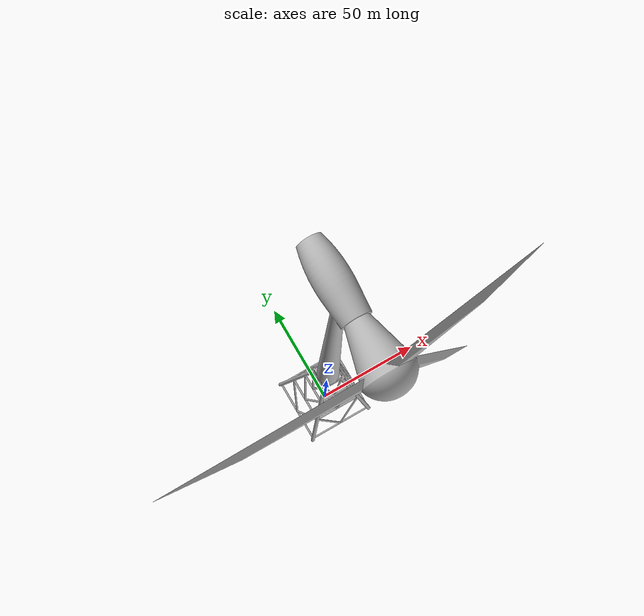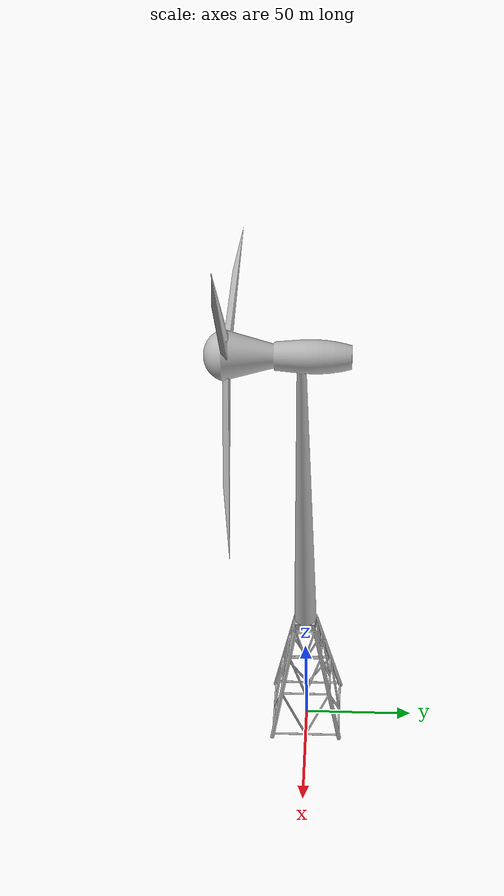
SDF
<?xml version="1.0" ?>
<sdf version="1.6">
    <model name="windturbine">
    <static>true</static>
    <link name="link">
      <inertial>
        <pose>0 0 0 0 0 0</pose>
        <mass>2000.86</mass>
        <inertia>
          <ixx>1</ixx>
          <ixy>0</ixy>
          <ixz>0</ixz>
          <iyy>1</iyy>
          <iyz>0</iyz>
          <izz>1</izz>
        </inertia>
      </inertial>
      <collision name="collision_inner">
        <pose>0 0 0 0 0 0</pose>
        <geometry>
         <mesh>
		<uri>model://windturbine/mesh/jacketK.stl</uri>
                <scale> 0.001 0.001 0.001 </scale>
	 </mesh>
        </geometry>
      </collision>
      <visual name="visual">
        <pose>0 0 0 0 0 0</pose>
        <geometry>
                <mesh>
			<uri>model://windturbine/mesh/jacketK.stl</uri>
                        <scale> 0.001 0.001 0.001 </scale>
		</mesh>
        </geometry>
      </visual>

    </link>
        <link name="toplink">
      <inertial>
        <pose>0 0 70 0 0 0</pose>
        <mass>2000.86</mass>
        <inertia>
          <ixx>1</ixx>
          <ixy>0</ixy>
          <ixz>0</ixz>
          <iyy>1</iyy>
          <iyz>0</iyz>
          <izz>1</izz>
        </inertia>
      </inertial>
      <collision name="collision_inner">
        <pose>0 0 70 0 0 0</pose>
        <geometry>
         <mesh>
		<uri>model://windturbine/mesh/windturbine.stl</uri>
                <scale> 0.5 0.5 0.5 </scale>
	 </mesh>
        </geometry>
      </collision>
      <visual name="visual">
        <pose>0 0 70 0 0 0</pose>
        <geometry>
                <mesh>
			<uri>model://windturbine/mesh/windturbine.stl</uri>
                        <scale> 0.5 0.5 0.5 </scale>
		</mesh>
        </geometry>
      </visual>
    </link>
  </model>
</sdf>
